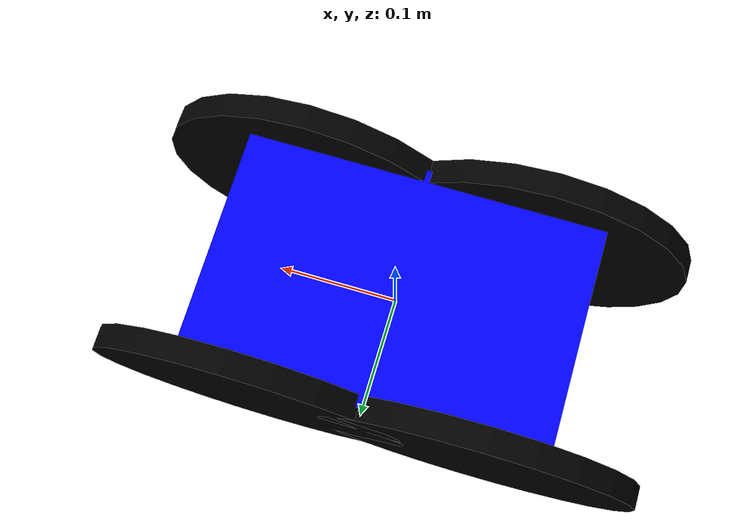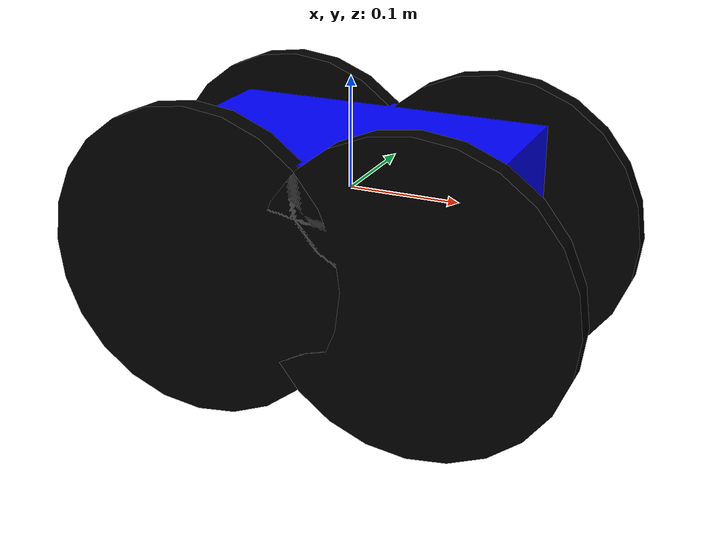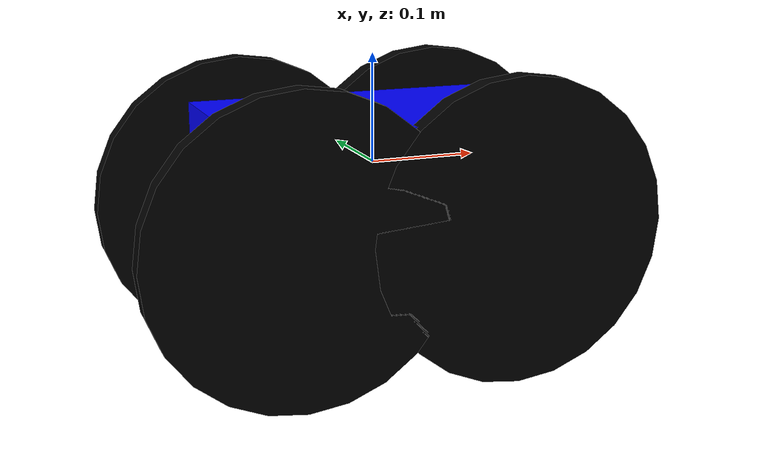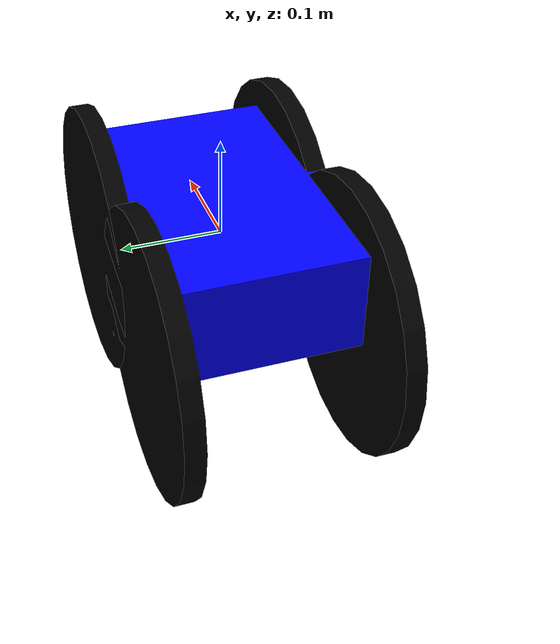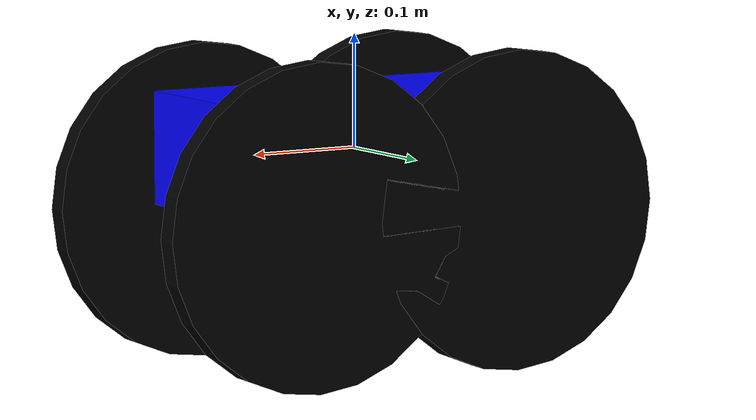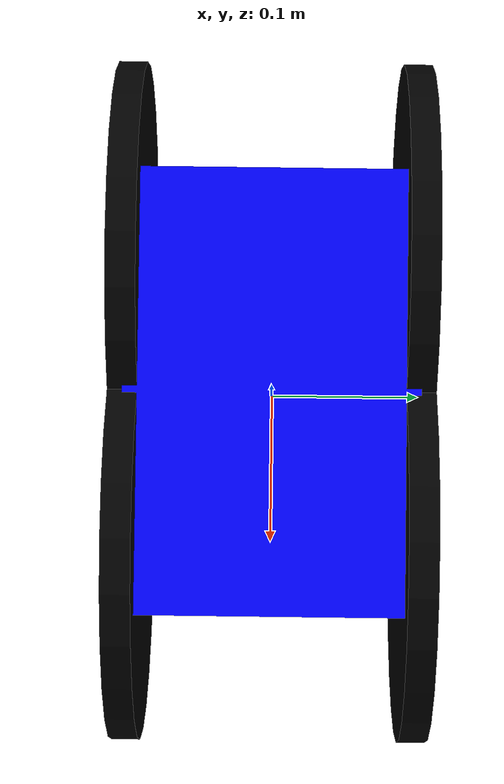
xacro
<?xml version="1.0"?>
<robot xmlns:xacro="http://www.ros.org/wiki/xacro">

    <!-- Macros or constants -->
    <xacro:property name="wheel_radius" value="0.14"/>
    <xacro:property name="wheel_width" value="0.02"/>

    <xacro:property name="base_height" value="0.1"/>
    <xacro:property name="base_length" value="0.3"/>
    <xacro:property name="base_width" value="0.2"/>

    <material name="white">
        <color rgba="1 1 1 1"/>
    </material>

    <material name="orange">
        <color rgba="1 0.3 0.1 1"/>
    </material>

    <material name="blue">
        <color rgba="0.2 0.2 1 1"/>
    </material>

    <material name="black">
        <color rgba="0.0 0.0 0.0 1"/>
    </material>

  <!-- Base Link -->
  <link name="base_link">
    <visual>
      <geometry>
        <box size="${base_length} ${base_width} ${base_height}"/>
      </geometry>
      <material name="blue">
        <color rgba="0 0 1 1"/>
      </material>
    </visual>
  </link>

  <!-- Rear Left Wheel -->
  <link name="rear_left_wheel">
    <visual>
      <geometry>
        <cylinder length="${wheel_width}" radius="${wheel_radius}"/>
      </geometry>
      <material name="black"/>
    </visual>
  </link>

  <!-- Rear Right Wheel -->
  <link name="rear_right_wheel">
    <visual>
      <geometry>
        <cylinder length="${wheel_width}" radius="${wheel_radius}"/>
      </geometry>
      <material name="black"/>
    </visual>
  </link>

  <!-- Front Left Wheel -->
  <link name="front_left_wheel">
    <visual>
      <geometry>
        <cylinder length="${wheel_width}" radius="${wheel_radius}"/>
      </geometry>
      <material name="black"/>
    </visual>
  </link>

  <!-- Front Right Wheel -->
  <link name="front_right_wheel">
    <visual>
      <geometry>
        <cylinder length="${wheel_width}" radius="${wheel_radius}"/>
      </geometry>
      <material name="black"/>
    </visual>
  </link>

  <!-- Joints -->
  <joint name="rear_left_wheel_joint" type="continuous">
    <parent link="base_link"/>
    <child link="rear_left_wheel"/>
    <origin xyz="0.1 0.1 -0.05" rpy="1.5708 0 0"/>
    <axis xyz="0 0 1"/>
  </joint>

  <joint name="rear_right_wheel_joint" type="continuous">
    <parent link="base_link"/>
    <child link="rear_right_wheel"/>
    <origin xyz="0.1 -0.1 -0.05" rpy="1.5708 0 0"/>
    <axis xyz="0 0 1"/>
  </joint>

  <joint name="front_left_wheel_joint" type="continuous">
    <parent link="base_link"/>
    <child link="front_left_wheel"/>
    <origin xyz="-0.1 0.1 -0.05" rpy="1.5708 0 0"/>
    <axis xyz="0 0 1"/>
  </joint>

  <joint name="front_right_wheel_joint" type="continuous">
    <parent link="base_link"/>
    <child link="front_right_wheel"/>
    <origin xyz="-0.1 -0.1 -0.05" rpy="1.5708 0 0"/>
    <axis xyz="0 0 1"/>
  </joint>

</robot>
